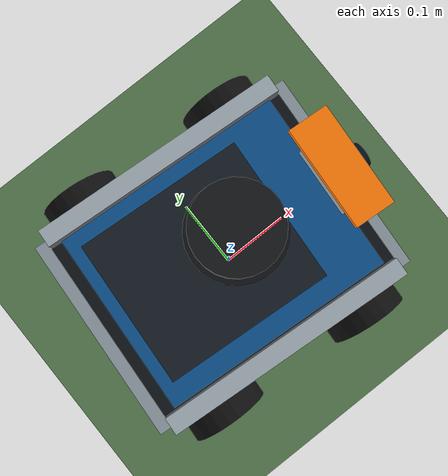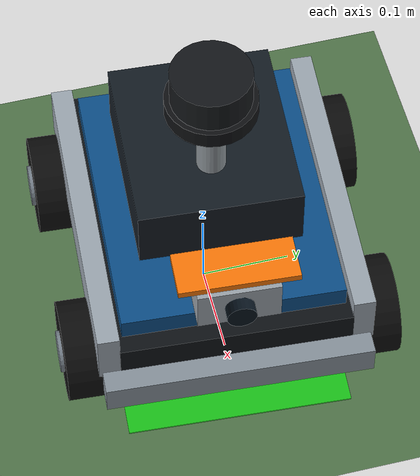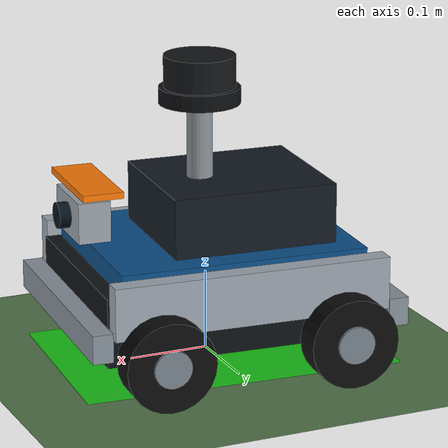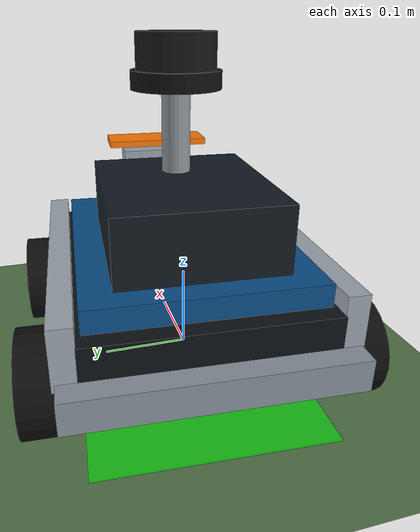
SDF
<sdf version="1.9">
 <world name="sami_track">
  <model name="ground_plane">
   <static>true</static>
   <link name="link">
    <collision name="col"><geometry><plane><normal>0 0 1</normal><size>60 60</size></plane></geometry></collision>
    <visual name="vis">
     <geometry><plane><normal>0 0 1</normal><size>60 60</size></plane></geometry>
     <material><ambient>0.24 0.34 0.22 1</ambient><diffuse>0.32 0.46 0.29 1</diffuse></material>
    </visual>
   </link>
  </model>
  <model name="sim_rosbot">
   <static>false</static>
   <pose>-0.0045 0.0075 0.11 0 0 -0.0681</pose>
   <link name="body">
    <inertial>
     <mass>2.0</mass>
     <inertia><ixx>0.02</ixx><iyy>0.02</iyy><izz>0.02</izz><ixy>0</ixy><ixz>0</ixz><iyz>0</iyz></inertia>
    </inertial>
    <collision name="col">
     <pose>0 0 -0.005 0 0 0</pose>
     <geometry><box><size>0.36 0.28 0.17</size></box></geometry>
    </collision>
    <visual name="chassis_lower">
     <pose>0 0 -0.025 0 0 0</pose>
     <geometry><box><size>0.35 0.255 0.085</size></box></geometry>
     <material><ambient>0.035 0.045 0.055 1</ambient><diffuse>0.055 0.070 0.085 1</diffuse></material>
    </visual>
    <visual name="top_plate">
     <pose>0 0 0.030 0 0 0</pose>
     <geometry><box><size>0.31 0.245 0.025</size></box></geometry>
     <material><ambient>0.035 0.20 0.34 1</ambient><diffuse>0.045 0.31 0.54 1</diffuse></material>
    </visual>
    <visual name="electronics_enclosure">
     <pose>-0.025 0 0.079 0 0 0</pose>
     <geometry><box><size>0.205 0.18 0.075</size></box></geometry>
     <material><ambient>0.055 0.075 0.095 1</ambient><diffuse>0.075 0.105 0.135 1</diffuse></material>
    </visual>
    <visual name="side_rail_left">
     <pose>0 0.139 0.005 0 0 0</pose>
     <geometry><box><size>0.345 0.024 0.065</size></box></geometry>
     <material><ambient>0.43 0.46 0.49 1</ambient><diffuse>0.62 0.66 0.70 1</diffuse></material>
    </visual>
    <visual name="side_rail_right">
     <pose>0 -0.139 0.005 0 0 0</pose>
     <geometry><box><size>0.345 0.024 0.065</size></box></geometry>
     <material><ambient>0.43 0.46 0.49 1</ambient><diffuse>0.62 0.66 0.70 1</diffuse></material>
    </visual>
    <visual name="front_bumper">
     <pose>0.187 0 -0.035 0 0 0</pose>
     <geometry><box><size>0.025 0.295 0.035</size></box></geometry>
     <material><ambient>0.34 0.37 0.40 1</ambient><diffuse>0.54 0.58 0.62 1</diffuse></material>
    </visual>
    <visual name="rear_bumper">
     <pose>-0.187 0 -0.035 0 0 0</pose>
     <geometry><box><size>0.025 0.295 0.035</size></box></geometry>
     <material><ambient>0.34 0.37 0.40 1</ambient><diffuse>0.54 0.58 0.62 1</diffuse></material>
    </visual>
    <visual name="sensor_mast">
     <pose>0.015 0 0.157 0 0 0</pose>
     <geometry><cylinder><radius>0.016</radius><length>0.12</length></cylinder></geometry>
     <material><ambient>0.32 0.34 0.36 1</ambient><diffuse>0.55 0.58 0.60 1</diffuse></material>
    </visual>
    <visual name="lidar_base">
     <pose>0.015 0 0.218 0 0 0</pose>
     <geometry><cylinder><radius>0.050</radius><length>0.020</length></cylinder></geometry>
     <material><ambient>0.03 0.035 0.04 1</ambient><diffuse>0.055 0.06 0.07 1</diffuse></material>
    </visual>
    <visual name="lidar_puck">
     <pose>0.015 0 0.247 0 0 0</pose>
     <geometry><cylinder><radius>0.044</radius><length>0.040</length></cylinder></geometry>
     <material><ambient>0.04 0.045 0.05 1</ambient><diffuse>0.075 0.085 0.095 1</diffuse></material>
    </visual>
    <visual name="front_camera">
     <pose>0.163 0 0.085 0 0 0</pose>
     <geometry><box><size>0.040 0.090 0.050</size></box></geometry>
     <material><ambient>0.36 0.38 0.40 1</ambient><diffuse>0.62 0.65 0.68 1</diffuse></material>
    </visual>
    <visual name="front_camera_lens">
     <pose>0.190 0 0.085 0 1.5708 0</pose>
     <geometry><cylinder><radius>0.016</radius><length>0.014</length></cylinder></geometry>
     <material><ambient>0.015 0.025 0.035 1</ambient><diffuse>0.025 0.07 0.11 1</diffuse></material>
    </visual>
    <visual name="front_direction_marker">
     <pose>0.158 0 0.122 0 0 0</pose>
     <geometry><box><size>0.050 0.13 0.008</size></box></geometry>
     <material><ambient>0.85 0.34 0.02 1</ambient><diffuse>1.0 0.48 0.03 1</diffuse></material>
    </visual>
    <visual name="wheel_fl">
     <pose>0.115 0.165 -0.055 1.5708 0 0</pose>
     <geometry><cylinder><radius>0.055</radius><length>0.040</length></cylinder></geometry>
     <material><ambient>0.03 0.03 0.03 1</ambient><diffuse>0.05 0.05 0.05 1</diffuse></material>
    </visual>
    <visual name="wheel_fr">
     <pose>0.115 -0.165 -0.055 1.5708 0 0</pose>
     <geometry><cylinder><radius>0.055</radius><length>0.040</length></cylinder></geometry>
     <material><ambient>0.03 0.03 0.03 1</ambient><diffuse>0.05 0.05 0.05 1</diffuse></material>
    </visual>
    <visual name="wheel_rl">
     <pose>-0.115 0.165 -0.055 1.5708 0 0</pose>
     <geometry><cylinder><radius>0.055</radius><length>0.040</length></cylinder></geometry>
     <material><ambient>0.03 0.03 0.03 1</ambient><diffuse>0.05 0.05 0.05 1</diffuse></material>
    </visual>
    <visual name="wheel_rr">
     <pose>-0.115 -0.165 -0.055 1.5708 0 0</pose>
     <geometry><cylinder><radius>0.055</radius><length>0.040</length></cylinder></geometry>
     <material><ambient>0.03 0.03 0.03 1</ambient><diffuse>0.05 0.05 0.05 1</diffuse></material>
    </visual>
    <visual name="hub_fl">
     <pose>0.115 0.186 -0.055 1.5708 0 0</pose>
     <geometry><cylinder><radius>0.023</radius><length>0.006</length></cylinder></geometry>
     <material><ambient>0.26 0.29 0.31 1</ambient><diffuse>0.48 0.52 0.56 1</diffuse></material>
    </visual>
    <visual name="hub_fr">
     <pose>0.115 -0.186 -0.055 1.5708 0 0</pose>
     <geometry><cylinder><radius>0.023</radius><length>0.006</length></cylinder></geometry>
     <material><ambient>0.26 0.29 0.31 1</ambient><diffuse>0.48 0.52 0.56 1</diffuse></material>
    </visual>
    <visual name="hub_rl">
     <pose>-0.115 0.186 -0.055 1.5708 0 0</pose>
     <geometry><cylinder><radius>0.023</radius><length>0.006</length></cylinder></geometry>
     <material><ambient>0.26 0.29 0.31 1</ambient><diffuse>0.48 0.52 0.56 1</diffuse></material>
    </visual>
    <visual name="hub_rr">
     <pose>-0.115 -0.186 -0.055 1.5708 0 0</pose>
     <geometry><cylinder><radius>0.023</radius><length>0.006</length></cylinder></geometry>
     <material><ambient>0.26 0.29 0.31 1</ambient><diffuse>0.48 0.52 0.56 1</diffuse></material>
    </visual>
   </link>
  </model>
  <model name="qcar_start_marker">
   <static>true</static>
   <pose>-0.0045 0.0075 0.001 0 0 -0.0681</pose>
   <link name="link">
    <visual name="vis">
     <geometry><box><size>0.40 0.25 0.002</size></box></geometry>
     <material><ambient>0.1 0.8 0.1 1</ambient><diffuse>0.1 0.9 0.1 0.8</diffuse></material>
    </visual>
   </link>
  </model>
 </world>
</sdf>
